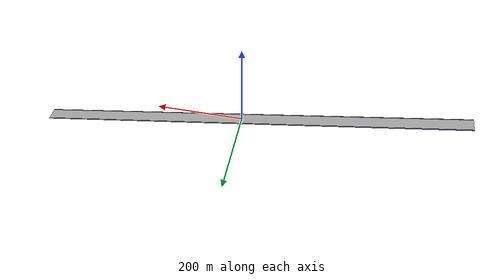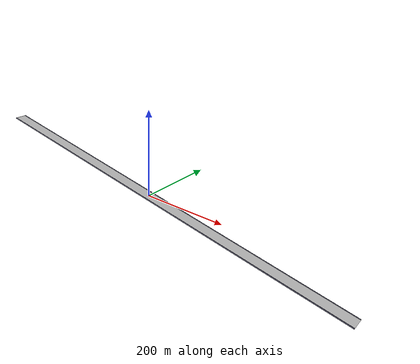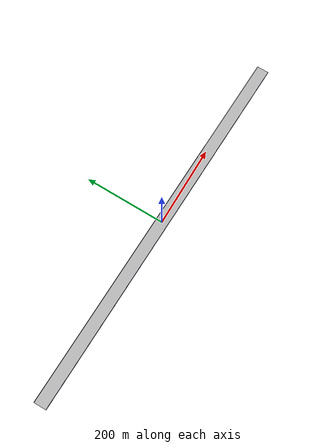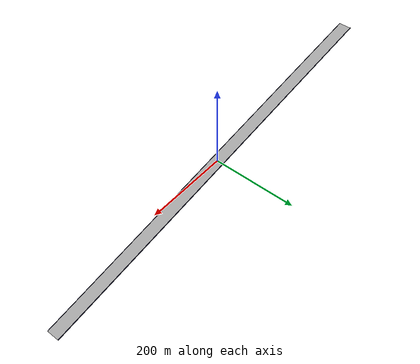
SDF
<?xml version="1.0" ?>
<sdf version="1.4">
  <world name="default">
    <scene>
      <sky>
        <clouds>
          <speed>12</speed>
        </clouds>
      </sky>
    <ambient>1.0 1.0 1.0 1.0</ambient>
    <shadows>false</shadows>
    </scene>

    <!-- A ground plane -->

    <!-- A global light source -->
    <include>
      <uri>model://urdf/models/sun</uri>
    </include>

	<model name="ramp">
      <static>true</static>
      <pose>0.0 0.0 0.1 0 0.1745 0.0</pose>
      <link name="link">
        <collision name="collision">
          <geometry>
            <box>
              <size>1000 30 .1</size>
            </box>
          </geometry>
          <surface>
			<friction>
				<ode>
					<mu>100</mu>
					<mu2>50</mu2>
				</ode>
			</friction>
		  </surface>
        </collision>
        <visual name="visual">
          <geometry>
            <box>
              <size>1000 30 .1</size>
            </box>
          </geometry>
        </visual>
      </link>
    </model>

    <model name="ramp_wall_1">
      <static>true</static>
      <pose>0.0 -15.0 0.0 0 0.1745 0.0</pose>
      <link name="link">
        <collision name="collision">
          <geometry>
            <box>
              <size>1000 1 2</size>
            </box>
          </geometry>
        </collision>
        <visual name="visual">
          <geometry>
            <box>
              <size>1000 1 2</size>
            </box>
          </geometry>
          <material>
	          <ambient>0.1 0.1 0.1 1</ambient>
	          <diffuse>0.1 0.1 0.2 1</diffuse>
	          <specular>0 0 0 0</specular>
	          <emissive>0 0 0 1</emissive>
        </material>
        </visual>
      </link>
    </model>

    <model name="ramp_wall_2">
      <static>true</static>
      <pose>0.0 15.0 0.0 0 0.1745 0.0</pose>
      <link name="link">
        <collision name="collision">
          <geometry>
            <box>
              <size>1000 1 2</size>
            </box>
          </geometry>
        </collision>
        <visual name="visual">
          <geometry>
            <box>
              <size>1000 1 2</size>
            </box>
          </geometry>
          <material>
	          <ambient>0.1 0.1 0.1 1</ambient>
	          <diffuse>0.1 0.1 0.2 1</diffuse>
	          <specular>0 0 0 0</specular>
	          <emissive>0 0 0 1</emissive>
        </material>
        </visual>
      </link>
    </model>

  <physics type='ode'>
    <max_step_size>0.001</max_step_size>
    <real_time_factor>0</real_time_factor>
    <real_time_update_rate>1000</real_time_update_rate>
    <gravity>0 0 -9.8</gravity>
  </physics>

  </world>
</sdf>
